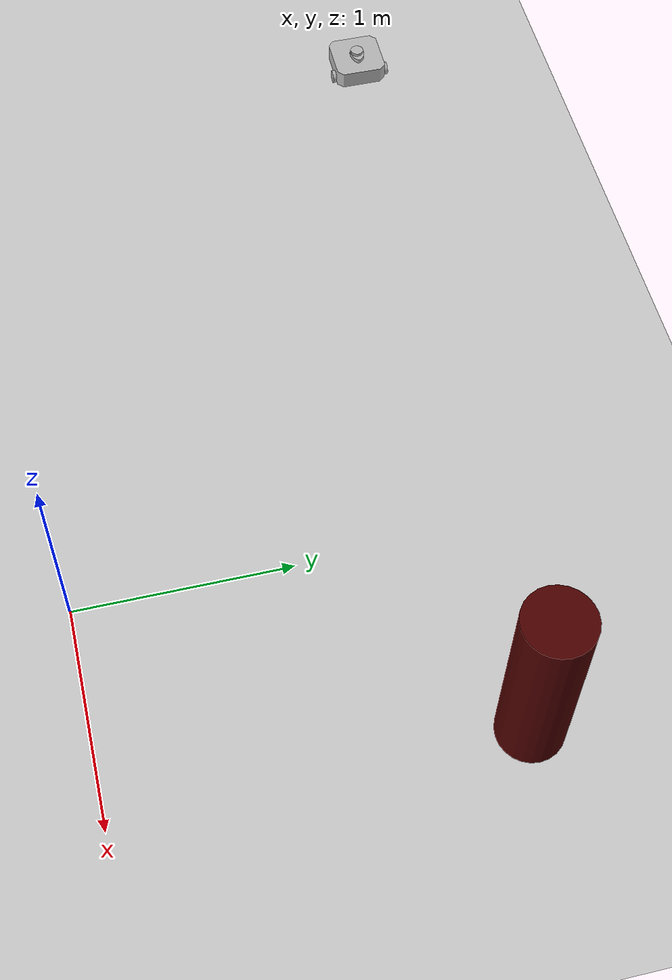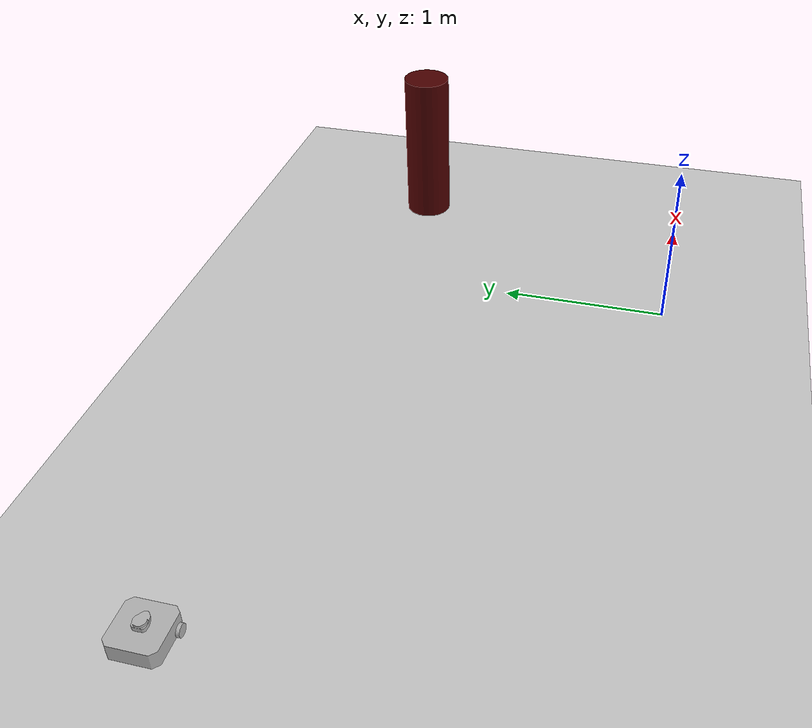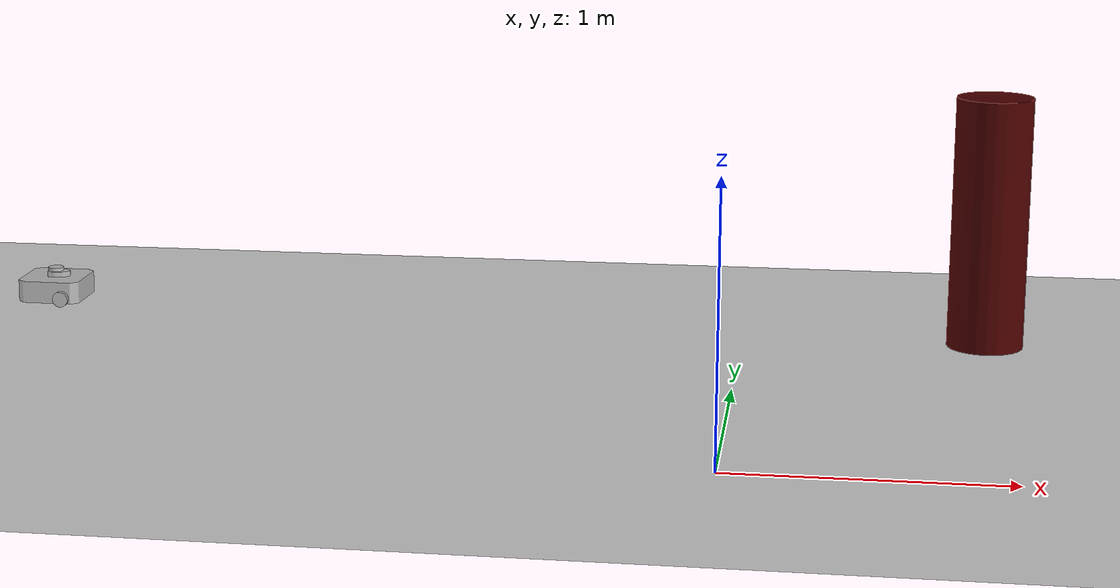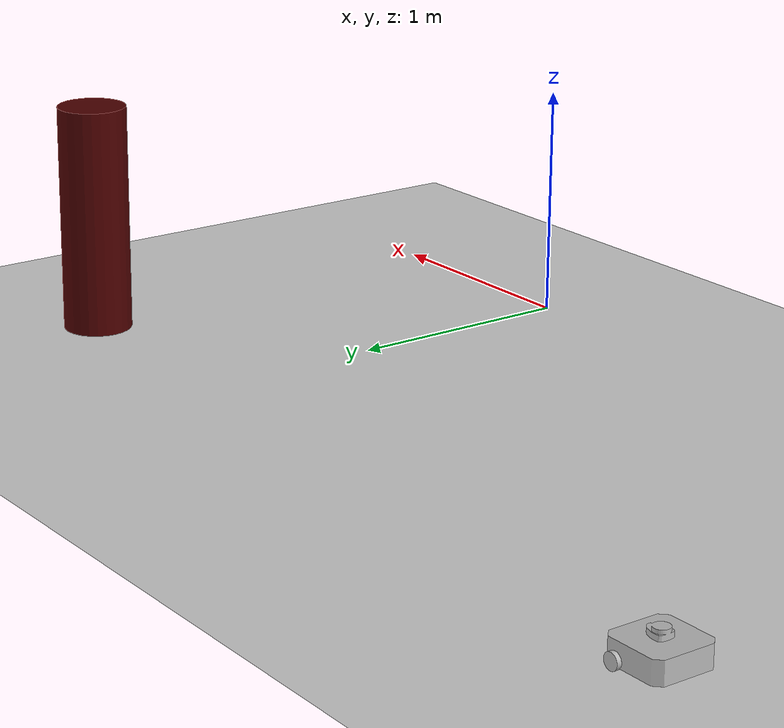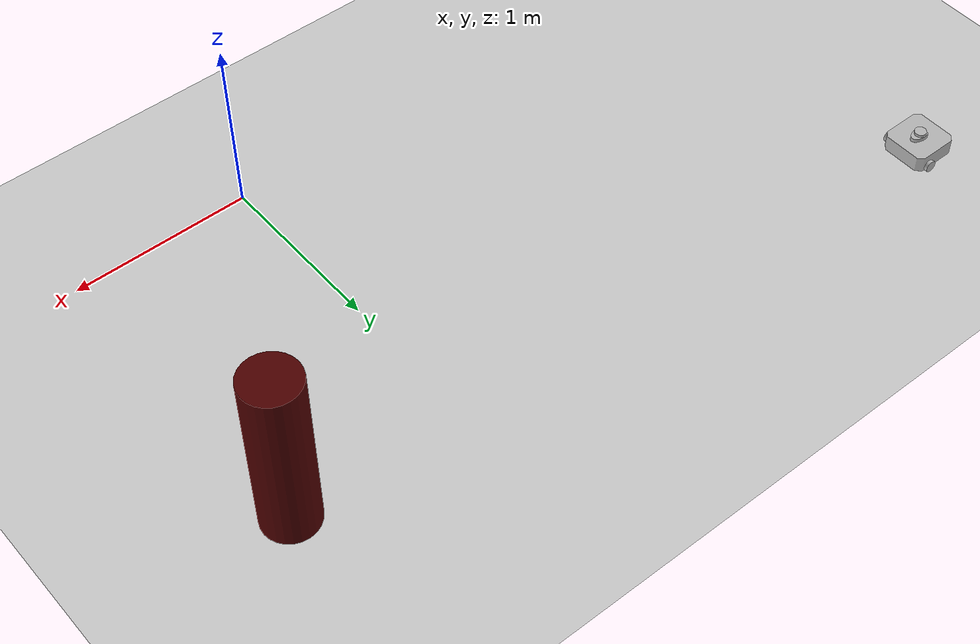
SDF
<sdf version="1.7">
 <world name="default">
  <light name="sun" type="directional">
   <pose>0 0 10 0 -0 0</pose>
   <diffuse>0.8 0.8 0.8 1</diffuse>
   <specular>0.2 0.2 0.2 1</specular>
   <attenuation>
    <range>1000</range>
    <constant>0.9</constant>
    <linear>0.01</linear>
    <quadratic>0.001</quadratic>
   </attenuation>
   <direction>-0.5 0.1 -0.9</direction>
   <spot><inner_angle>0</inner_angle><outer_angle>0</outer_angle><falloff>0</falloff></spot>
  </light>
  <model name="ground_plane">
   <static>1</static>
   <link name="link">
    <collision name="collision">
     <geometry><plane><normal>0 0 1</normal><size>100 100</size></plane></geometry>
     <surface>
      <contact><collide_bitmask>65535</collide_bitmask></contact>
      <friction><ode><mu>100</mu><mu2>50</mu2></ode></friction>
     </surface>
    </collision>
    <visual name="visual">
     <cast_shadows>0</cast_shadows>
     <geometry><plane><normal>0 0 1</normal><size>100 100</size></plane></geometry>
     <material>
      <script><uri>file://media/materials/scripts/gazebo.material</uri><name>Gazebo/Grey</name></script>
     </material>
    </visual>
   </link>
  </model>
  <gravity>0 0 -9.8</gravity>
  <magnetic_field>6e-06 2.3e-05 -4.2e-05</magnetic_field>
  <atmosphere type="adiabatic"/>
  <physics type="ode">
   <max_step_size>0.001</max_step_size>
   <real_time_factor>1</real_time_factor>
   <real_time_update_rate>1000</real_time_update_rate>
  </physics>
  <scene><ambient>0.4 0.4 0.4 1</ambient><background>0.7 0.7 0.7 1</background><shadows>1</shadows></scene>
  <audio><device>default</device></audio>
  <spherical_coordinates>
   <surface_model>EARTH_WGS84</surface_model>
   <latitude_deg>0</latitude_deg>
   <longitude_deg>0</longitude_deg>
   <elevation>0</elevation>
   <heading_deg>0</heading_deg>
  </spherical_coordinates>
  <model name="waffle_pi">
   <pose>-2.89473 2.00823 0.007908 2e-06 0.006292 5.5e-05</pose>
   <link name="base_footprint">
    <inertial>
     <inertia><ixx>1</ixx><ixy>0</ixy><ixz>0</ixz><iyy>1</iyy><iyz>0</iyz><izz>1</izz></inertia>
     <mass>1</mass>
    </inertial>
   </link>
   <link name="base_link">
    <inertial>
     <pose>-0.064 0 0.048 0 -0 0</pose>
     <inertia>
      <ixx>0.0421114</ixx>
      <ixy>0</ixy>
      <ixz>0</ixz>
      <iyy>0.0421114</iyy>
      <iyz>0</iyz>
      <izz>0.0752549</izz>
     </inertia>
     <mass>1.37291</mass>
    </inertial>
    <collision name="base_collision">
     <pose>-0.064 0 0.048 0 -0 0</pose>
     <geometry><box><size>0.265 0.265 0.089</size></box></geometry>
    </collision>
    <visual name="base_visual">
     <pose>-0.064 0 0 0 -0 0</pose>
     <geometry>
      <mesh><uri>model://turtlebot3_common/meshes/waffle_pi_base.dae</uri><scale>0.001 0.001 0.001</scale></mesh>
     </geometry>
    </visual>
   </link>
   <link name="imu_link">
    <sensor name="tb3_imu" type="imu">
     <always_on>1</always_on>
     <update_rate>200</update_rate>
     <imu>
      <angular_velocity>
       <x><noise type="gaussian"><mean>0</mean><stddev>0.0002</stddev></noise></x>
       <y><noise type="gaussian"><mean>0</mean><stddev>0.0002</stddev></noise></y>
       <z><noise type="gaussian"><mean>0</mean><stddev>0.0002</stddev></noise></z>
      </angular_velocity>
      <linear_acceleration>
       <x><noise type="gaussian"><mean>0</mean><stddev>0.017</stddev></noise></x>
       <y><noise type="gaussian"><mean>0</mean><stddev>0.017</stddev></noise></y>
       <z><noise type="gaussian"><mean>0</mean><stddev>0.017</stddev></noise></z>
      </linear_acceleration>
     </imu>
     <plugin name="turtlebot3_imu" filename="libgazebo_ros_imu_sensor.so">
      <ros><remapping>~/out:=imu</remapping></ros>
     </plugin>
    </sensor>
    <inertial>
     <inertia><ixx>1</ixx><ixy>0</ixy><ixz>0</ixz><iyy>1</iyy><iyz>0</iyz><izz>1</izz></inertia>
     <mass>1</mass>
    </inertial>
   </link>
   <link name="base_scan">
    <inertial>
     <pose>-0.052 0 0.111 0 -0 0</pose>
     <inertia><ixx>0.001</ixx><ixy>0</ixy><ixz>0</ixz><iyy>0.001</iyy><iyz>0</iyz><izz>0.001</izz></inertia>
     <mass>0.114</mass>
    </inertial>
    <collision name="lidar_sensor_collision">
     <pose>-0.052 0 0.111 0 -0 0</pose>
     <geometry><cylinder><radius>0.0508</radius><length>0.055</length></cylinder></geometry>
    </collision>
    <visual name="lidar_sensor_visual">
     <pose>-0.064 0 0.121 0 -0 0</pose>
     <geometry>
      <mesh><uri>model://turtlebot3_common/meshes/lds.dae</uri><scale>0.001 0.001 0.001</scale></mesh>
     </geometry>
    </visual>
    <sensor name="hls_lfcd_lds" type="ray">
     <always_on>1</always_on>
     <visualize>1</visualize>
     <pose>-0.064 0 0.121 0 -0 0</pose>
     <update_rate>5</update_rate>
     <ray>
      <scan>
       <horizontal>
        <samples>360</samples>
        <resolution>1</resolution>
        <min_angle>0</min_angle>
        <max_angle>6.28</max_angle>
       </horizontal>
       <vertical><samples>1</samples><min_angle>0</min_angle><max_angle>0</max_angle></vertical>
      </scan>
      <range><min>0.12</min><max>3.5</max><resolution>0.015</resolution></range>
      <noise><type>gaussian</type><mean>0</mean><stddev>0.01</stddev></noise>
     </ray>
     <plugin name="turtlebot3_laserscan" filename="libgazebo_ros_ray_sensor.so">
      <ros><remapping>~/out:=scan</remapping></ros>
      <output_type>sensor_msgs/LaserScan</output_type>
      <frame_name>base_scan</frame_name>
     </plugin>
    </sensor>
   </link>
   <link name="wheel_left_link">
    <inertial>
     <pose>0 0.144 0.023 -1.57 0 0</pose>
     <inertia>
      <ixx>0.00181582</ixx>
      <ixy>-9.3392e-12</ixy>
      <ixz>1.04909e-11</ixz>
      <iyy>0.00329221</iyy>
      <iyz>5.75694e-11</iyz>
      <izz>0.00181582</izz>
     </inertia>
     <mass>0.0284989</mass>
    </inertial>
    <collision name="wheel_left_collision">
     <pose>0 0.144 0.023 -1.57 0 0</pose>
     <geometry><cylinder><radius>0.033</radius><length>0.018</length></cylinder></geometry>
     <surface>
      <friction>
       <ode><mu>100000</mu><mu2>100000</mu2><fdir1>0 0 0</fdir1><slip1>0</slip1><slip2>0</slip2></ode>
      </friction>
      <contact>
       <ode>
        <soft_cfm>0</soft_cfm>
        <soft_erp>0.2</soft_erp>
        <kp>100000</kp>
        <kd>1</kd>
        <max_vel>0.01</max_vel>
        <min_depth>0.001</min_depth>
       </ode>
      </contact>
     </surface>
    </collision>
    <visual name="wheel_left_visual">
     <pose>0 0.144 0.023 0 -0 0</pose>
     <geometry>
      <mesh><uri>model://turtlebot3_common/meshes/tire.dae</uri><scale>0.001 0.001 0.001</scale></mesh>
     </geometry>
    </visual>
   </link>
   <link name="wheel_right_link">
    <inertial>
     <pose>0 -0.144 0.023 -1.57 0 0</pose>
     <inertia>
      <ixx>0.00181582</ixx>
      <ixy>-9.3392e-12</ixy>
      <ixz>1.04909e-11</ixz>
      <iyy>0.00329221</iyy>
      <iyz>5.75694e-11</iyz>
      <izz>0.00181582</izz>
     </inertia>
     <mass>0.0284989</mass>
    </inertial>
    <collision name="wheel_right_collision">
     <pose>0 -0.144 0.023 -1.57 0 0</pose>
     <geometry><cylinder><radius>0.033</radius><length>0.018</length></cylinder></geometry>
     <surface>
      <friction>
       <ode><mu>100000</mu><mu2>100000</mu2><fdir1>0 0 0</fdir1><slip1>0</slip1><slip2>0</slip2></ode>
      </friction>
      <contact>
       <ode>
        <soft_cfm>0</soft_cfm>
        <soft_erp>0.2</soft_erp>
        <kp>100000</kp>
        <kd>1</kd>
        <max_vel>0.01</max_vel>
        <min_depth>0.001</min_depth>
       </ode>
      </contact>
     </surface>
    </collision>
    <visual name="wheel_right_visual">
     <pose>0 -0.144 0.023 0 -0 0</pose>
     <geometry>
      <mesh><uri>model://turtlebot3_common/meshes/tire.dae</uri><scale>0.001 0.001 0.001</scale></mesh>
     </geometry>
    </visual>
   </link>
   <link name="caster_back_right_link">
    <pose>-0.177 -0.064 -0.004 -1.57 0 0</pose>
    <inertial>
     <mass>0.001</mass>
     <inertia><ixx>1e-05</ixx><ixy>0</ixy><ixz>0</ixz><iyy>1e-05</iyy><iyz>0</iyz><izz>1e-05</izz></inertia>
    </inertial>
    <collision name="collision">
     <geometry><sphere><radius>0.005</radius></sphere></geometry>
     <surface>
      <contact>
       <ode>
        <soft_cfm>0</soft_cfm>
        <soft_erp>0.2</soft_erp>
        <kp>100000</kp>
        <kd>1</kd>
        <max_vel>0.01</max_vel>
        <min_depth>0.001</min_depth>
       </ode>
      </contact>
     </surface>
    </collision>
   </link>
   <link name="caster_back_left_link">
    <pose>-0.177 0.064 -0.004 -1.57 0 0</pose>
    <inertial>
     <mass>0.001</mass>
     <inertia><ixx>1e-05</ixx><ixy>0</ixy><ixz>0</ixz><iyy>1e-05</iyy><iyz>0</iyz><izz>1e-05</izz></inertia>
    </inertial>
    <collision name="collision">
     <geometry><sphere><radius>0.005</radius></sphere></geometry>
     <surface>
      <contact>
       <ode>
        <soft_cfm>0</soft_cfm>
        <soft_erp>0.2</soft_erp>
        <kp>100000</kp>
        <kd>1</kd>
        <max_vel>0.01</max_vel>
        <min_depth>0.001</min_depth>
       </ode>
      </contact>
     </surface>
    </collision>
   </link>
   <link name="camera_link">
    <inertial>
     <inertia><ixx>1</ixx><ixy>0</ixy><ixz>0</ixz><iyy>1</iyy><iyz>0</iyz><izz>1</izz></inertia>
     <mass>1</mass>
    </inertial>
   </link>
   <link name="camera_rgb_optical_frame">
    <inertial>
     <pose>0.076 0 0.093 0 -0 0</pose>
     <inertia><ixx>0.001</ixx><ixy>0</ixy><ixz>0</ixz><iyy>0.001</iyy><iyz>0</iyz><izz>0.001</izz></inertia>
     <mass>0.035</mass>
    </inertial>
    <pose>0.076 0 0.093 0 -0 0</pose>
    <sensor name="camera" type="camera">
     <always_on>1</always_on>
     <visualize>1</visualize>
     <update_rate>30</update_rate>
     <camera name="picam">
      <horizontal_fov>1.0856</horizontal_fov>
      <image><width>640</width><height>480</height><format>R8G8B8</format></image>
      <clip><near>0.03</near><far>100</far></clip>
      <noise><type>gaussian</type><mean>0</mean><stddev>0.007</stddev></noise>
     </camera>
     <plugin name="camera_driver" filename="libgazebo_ros_camera.so"/>
    </sensor>
   </link>
   <joint name="base_joint" type="fixed">
    <parent>base_footprint</parent>
    <child>base_link</child>
    <pose>0 0 0.01 0 -0 0</pose>
   </joint>
   <joint name="wheel_left_joint" type="revolute">
    <parent>base_link</parent>
    <child>wheel_left_link</child>
    <pose>0 0.144 0.023 -1.57 0 0</pose>
    <axis>
     <xyz>0 0 1</xyz>
     <limit><lower>-1e+16</lower><upper>1e+16</upper></limit>
     <dynamics><spring_reference>0</spring_reference><spring_stiffness>0</spring_stiffness></dynamics>
    </axis>
   </joint>
   <joint name="wheel_right_joint" type="revolute">
    <parent>base_link</parent>
    <child>wheel_right_link</child>
    <pose>0 -0.144 0.023 -1.57 0 0</pose>
    <axis>
     <xyz>0 0 1</xyz>
     <limit><lower>-1e+16</lower><upper>1e+16</upper></limit>
     <dynamics><spring_reference>0</spring_reference><spring_stiffness>0</spring_stiffness></dynamics>
    </axis>
   </joint>
   <joint name="caster_back_right_joint" type="ball">
    <parent>base_link</parent>
    <child>caster_back_right_link</child>
   </joint>
   <joint name="caster_back_left_joint" type="ball">
    <parent>base_link</parent>
    <child>caster_back_left_link</child>
   </joint>
   <joint name="imu_joint" type="fixed">
    <parent>base_link</parent>
    <child>imu_link</child>
    <pose>-0.032 0 0.068 0 -0 0</pose>
    <axis><xyz>0 0 1</xyz><limit><lower>-1e+16</lower><upper>1e+16</upper></limit></axis>
   </joint>
   <joint name="lidar_joint" type="fixed">
    <parent>base_link</parent>
    <child>base_scan</child>
    <pose>-0.064 0 0.121 0 -0 0</pose>
    <axis><xyz>0 0 1</xyz><limit><lower>-1e+16</lower><upper>1e+16</upper></limit></axis>
   </joint>
   <joint name="camera_joint" type="fixed">
    <parent>base_link</parent>
    <child>camera_link</child>
    <pose>0.073 -0.011 0.084 0 -0 0</pose>
    <axis><xyz>0 0 1</xyz><limit><lower>-1e+16</lower><upper>1e+16</upper></limit></axis>
   </joint>
   <joint name="camera_rgb_joint" type="fixed">
    <parent>camera_link</parent>
    <child>camera_rgb_optical_frame</child>
    <pose>0.003 0.011 0.009 0 -0 0</pose>
    <axis><xyz>0 0 1</xyz><limit><lower>-1e+16</lower><upper>1e+16</upper></limit></axis>
   </joint>
   <plugin name="turtlebot3_diff_drive" filename="libgazebo_ros_diff_drive.so">
    <update_rate>30</update_rate>
    <left_joint>wheel_left_joint</left_joint>
    <right_joint>wheel_right_joint</right_joint>
    <wheel_separation>0.287</wheel_separation>
    <wheel_diameter>0.066</wheel_diameter>
    <max_wheel_torque>20</max_wheel_torque>
    <max_wheel_acceleration>1.0</max_wheel_acceleration>
    <command_topic>cmd_vel</command_topic>
    <publish_odom>1</publish_odom>
    <publish_odom_tf>1</publish_odom_tf>
    <publish_wheel_tf>0</publish_wheel_tf>
    <odometry_topic>odom</odometry_topic>
    <odometry_frame>odom</odometry_frame>
    <robot_base_frame>base_footprint</robot_base_frame>
   </plugin>
   <plugin name="turtlebot3_joint_state" filename="libgazebo_ros_joint_state_publisher.so">
    <ros><remapping>~/out:=joint_states</remapping></ros>
    <update_rate>30</update_rate>
    <joint_name>wheel_left_joint</joint_name>
    <joint_name>wheel_right_joint</joint_name>
   </plugin>
  </model>
  <model name="3.6_cylinder">
   <link name="link">
    <inertial>
     <mass>1</mass>
     <inertia><ixx>0.145833</ixx><ixy>0</ixy><ixz>0</ixz><iyy>0.145833</iyy><iyz>0</iyz><izz>0.125</izz></inertia>
    </inertial>
    <visual name="visual">
     <geometry><cylinder><radius>0.15</radius><length>1</length></cylinder></geometry>
     <material>
      <script><name>Gazebo/Grey</name><uri>file://media/materials/scripts/gazebo.material</uri></script>
      <shader type="pixel"><normal_map>__default__</normal_map></shader>
      <ambient>0.3 0 0 1</ambient>
      <diffuse>0.7 0.7 0.7 1</diffuse>
      <specular>0.01 0.01 0.01 1</specular>
      <emissive>0 0 0 1</emissive>
     </material>
    </visual>
    <collision name="collision">
     <geometry><cylinder><radius>0.15</radius><length>1</length></cylinder></geometry>
     <surface>
      <friction>
       <ode><mu>1</mu><mu2>1</mu2><fdir1>0 0 0</fdir1><slip1>0</slip1><slip2>0</slip2></ode>
       <torsional>
        <coefficient>1</coefficient>
        <patch_radius>0</patch_radius>
        <surface_radius>0</surface_radius>
        <use_patch_radius>1</use_patch_radius>
        <ode><slip>0</slip></ode>
       </torsional>
      </friction>
      <bounce><restitution_coefficient>0</restitution_coefficient><threshold>1e+06</threshold></bounce>
      <contact>
       <collide_without_contact>0</collide_without_contact>
       <collide_without_contact_bitmask>1</collide_without_contact_bitmask>
       <collide_bitmask>1</collide_bitmask>
       <ode>
        <soft_cfm>0</soft_cfm>
        <soft_erp>0.2</soft_erp>
        <kp>1e+13</kp>
        <kd>1</kd>
        <max_vel>0.01</max_vel>
        <min_depth>0</min_depth>
       </ode>
       <bullet>
        <split_impulse>1</split_impulse>
        <split_impulse_penetration_threshold>-0.01</split_impulse_penetration_threshold>
        <soft_cfm>0</soft_cfm>
        <soft_erp>0.2</soft_erp>
        <kp>1e+13</kp>
        <kd>1</kd>
       </bullet>
      </contact>
     </surface>
    </collision>
   </link>
   <static>0</static>
   <pose>0.961459 1.78364 0.499997 0 0 -5e-06</pose>
  </model>
 </world>
</sdf>
